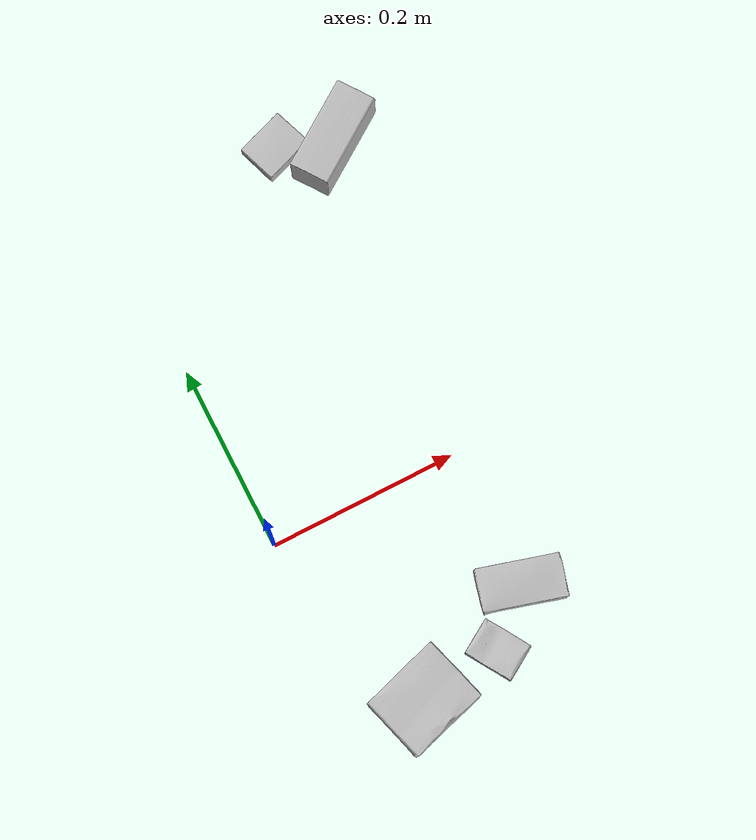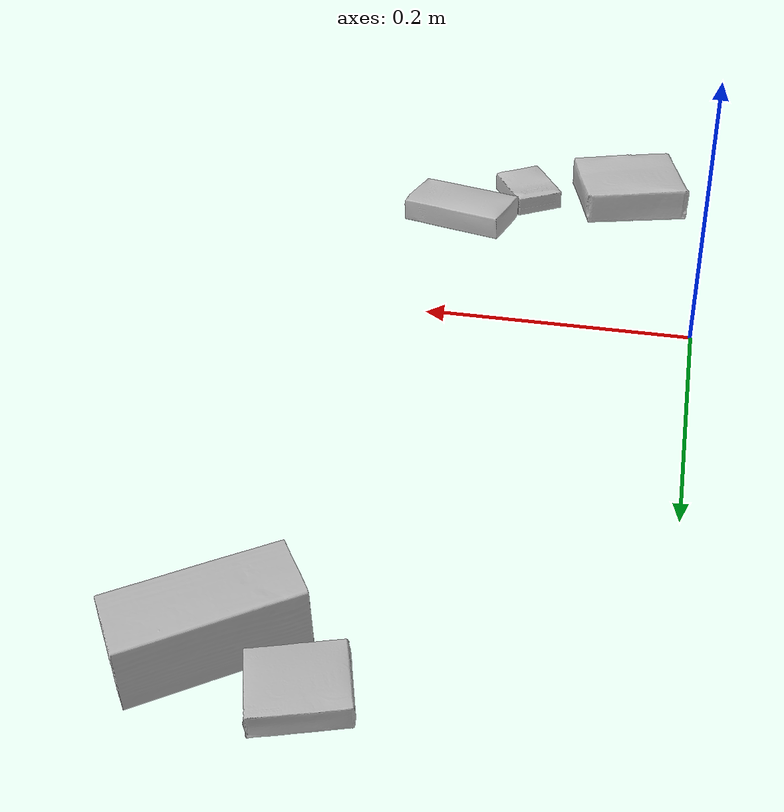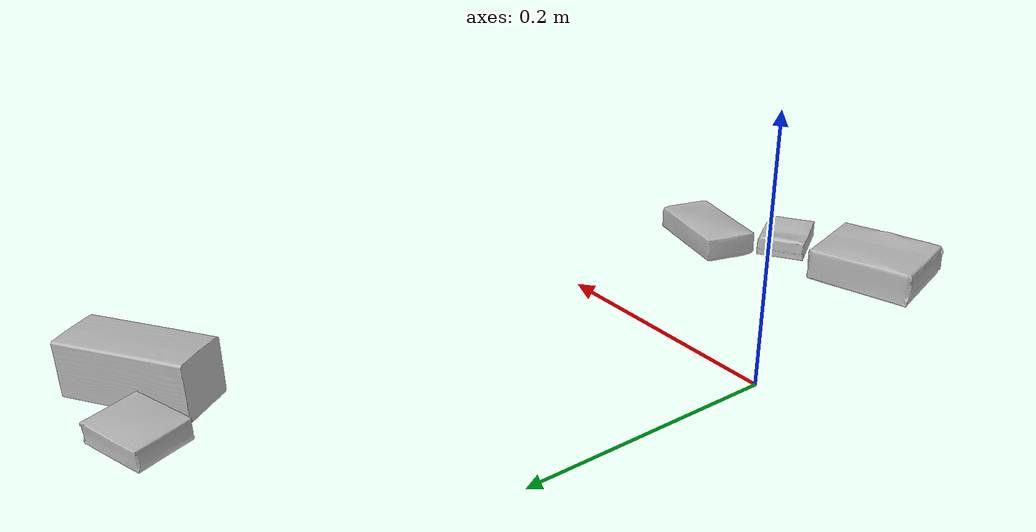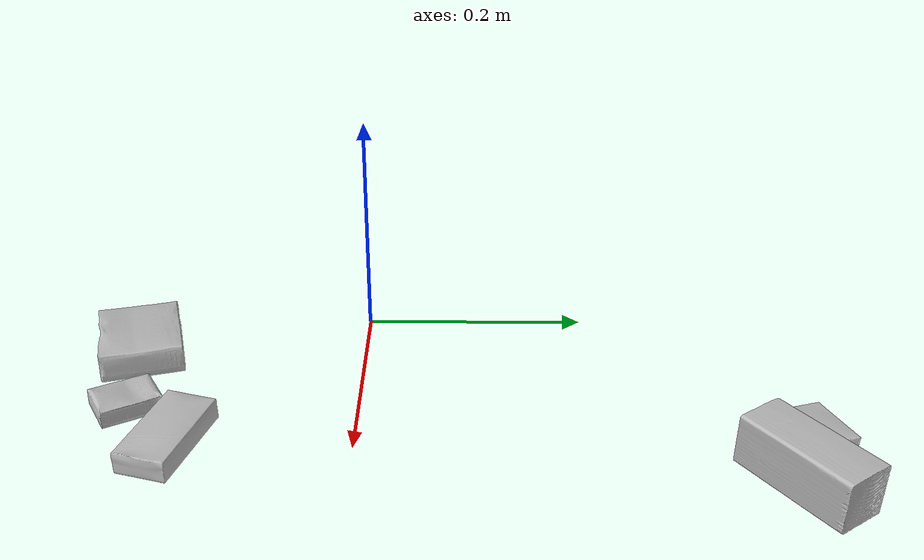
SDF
<sdf version="1.4">
  <world name="default">
    <light name="light1" type="point">
      <pose>0 0 1 0 0 0</pose>
      <diffuse>3 3 3 1</diffuse>
      <specular>3 3 3 1</specular>
    </light>
    <light name="light2" type="point">
      <pose>0 0.5 2 0 0 0</pose>
      <diffuse>1 1 1 1</diffuse>
      <specular>1 1 1 1</specular>
    </light>
    <light name="light3" type="point">
      <pose>0 0.5 2 0 0 0</pose>
      <diffuse>3 3 3 1</diffuse>
      <specular>3 3 3 1</specular>
    </light>
    <scene>
      <ambient>0.7 0.7 0.7</ambient>
    </scene>
    <model name="box1">
      <link name="link_box1">
        <collision name="default">
          <geometry>
            <mesh>
              <uri>model://gelatin_box/collision_meshes/collision.obj</uri>
              <scale>1.0 1.0 1.0</scale>
            </mesh>
          </geometry>
          <surface>
            <friction>
              <ode>
                <mu>0.5</mu>
                <mu2>0.5</mu2>
              </ode>
            </friction>
          <contact>
        <ode>
            <max_vel>0</max_vel>
            <min_depth>0.0001</min_depth>
            <kp>1e8</kp>
        </ode>
    </contact></surface>
        </collision>
        <visual name="default">
          <geometry>
            <mesh>
              <uri>model://gelatin_box/visual_meshes/visual.dae</uri>
              <scale>1.0 1.0 1.0</scale>
            </mesh>
          </geometry>
        </visual>
        <inertial>
          <mass>0.2001359760761261</mass>
          <pose>0.0004319618456065655 0.00011156872642459348 -0.00036403213744051754 -0.0010503718728910522 -0.00475581915504666 0.01644056319729456</pose>
          <inertia>
            <ixx>0.00014127967</ixx>
            <iyy>0.00010091532</iyy>
            <izz>0.00021505913</izz>
            <ixy>0</ixy>
            <ixz>0</ixz>
            <iyz>0</iyz>
          </inertia>
        </inertial>
      </link>
      <pose>0.06077662855386734 -0.20445749163627625 0.015168316662311554 0.005597501898708067 -0.007304554623359647 -1.2954906153888917</pose>
    </model>
    <model name="box2">
      <link name="link_box2">
        <collision name="default">
          <geometry>
            <mesh>
              <uri>model://cracker_box/collision_meshes/collision.obj</uri>
              <scale>0.25 0.25 0.25</scale>
            </mesh>
          </geometry>
          <surface>
            <friction>
              <ode>
                <mu>0.5</mu>
                <mu2>0.5</mu2>
              </ode>
            </friction>
          <contact>
        <ode>
            <max_vel>0</max_vel>
            <min_depth>0.0001</min_depth>
            <kp>1e8</kp>
        </ode>
    </contact></surface>
        </collision>
        <visual name="default">
          <geometry>
            <mesh>
              <uri>model://cracker_box/visual_meshes/visual.dae</uri>
              <scale>0.25 0.25 0.25</scale>
            </mesh>
          </geometry>
        </visual>
        <inertial>
          <mass>0.052757441997528076</mass>
          <pose>0.00023660421720705926 6.358561950037256e-05 -0.0004257383698131889 -0.0003162076882876523 -0.011106491463043667 0.002546795002652857</pose>
          <inertia>
            <ixx>8.38696e-06</ixx>
            <iyy>1.384852e-05</iyy>
            <izz>1.9763109e-05</izz>
            <ixy>0</ixy>
            <ixz>0</ixz>
            <iyz>0</iyz>
          </inertia>
        </inertial>
      </link>
      <pose>0.14876604080200195 -0.19480837881565094 0.009120451286435127 -0.011788118060546318 -0.007367187179516 -1.0266477394871818</pose>
    </model>
    <model name="box3">
      <link name="link_box3">
        <collision name="default">
          <geometry>
            <mesh>
              <uri>model://wood_block/collision_meshes/collision.obj</uri>
              <scale>0.5 0.5 0.5</scale>
            </mesh>
          </geometry>
          <surface>
            <friction>
              <ode>
                <mu>0.5</mu>
                <mu2>0.5</mu2>
              </ode>
            </friction>
          <contact>
        <ode>
            <max_vel>0</max_vel>
            <min_depth>0.0001</min_depth>
            <kp>1e8</kp>
        </ode>
    </contact></surface>
        </collision>
        <visual name="default">
          <geometry>
            <mesh>
              <uri>model://wood_block/visual_meshes/visual.dae</uri>
              <scale>0.5 0.5 0.5</scale>
            </mesh>
          </geometry>
        </visual>
        <inertial>
          <mass>0.15567830204963684</mass>
          <pose>-2.9066577553749084e-06 -0.000285404734313488 0.00013204292918089777 -0.052210429644919926 -0.005192696852900695 -0.006861378081336091</pose>
          <inertia>
            <ixx>5.2080282e-05</ixx>
            <iyy>0.00016452163</iyy>
            <izz>0.00016390622</izz>
            <ixy>0</ixy>
            <ixz>0</ixz>
            <iyz>0</iyz>
          </inertia>
        </inertial>
      </link>
      <pose>0.24431179463863373 0.34723085165023804 0.022629261016845703 -0.005208380023779952 0.005718732119445273 0.605775259078449</pose>
    </model>
    <model name="box4">
      <link name="link_box4">
        <collision name="default">
          <geometry>
            <mesh>
              <uri>model://pudding_box/collision_meshes/collision.obj</uri>
              <scale>0.5 0.5 0.5</scale>
            </mesh>
          </geometry>
          <surface>
            <friction>
              <ode>
                <mu>0.5</mu>
                <mu2>0.5</mu2>
              </ode>
            </friction>
          <contact>
        <ode>
            <max_vel>0</max_vel>
            <min_depth>0.0001</min_depth>
            <kp>1e8</kp>
        </ode>
    </contact></surface>
        </collision>
        <visual name="default">
          <geometry>
            <mesh>
              <uri>model://pudding_box/visual_meshes/visual.dae</uri>
              <scale>0.5 0.5 0.5</scale>
            </mesh>
          </geometry>
        </visual>
        <inertial>
          <mass>0.0498165600001812</mass>
          <pose>0.00024474109522998333 0.00040339428232982755 -0.0002594413817860186 0.00521310227074754 -0.006603796865596143 0.02007982702575369</pose>
          <inertia>
            <ixx>1.4078764e-05</ixx>
            <iyy>9.472293e-06</iyy>
            <izz>2.0790974e-05</izz>
            <ixy>0</ixy>
            <ixz>0</ixz>
            <iyz>0</iyz>
          </inertia>
        </inertial>
      </link>
      <pose>0.18757390975952148 0.3700249493122101 0.00986290629953146 0.022348445478338686 -0.0113918459613396 -1.2415867080842564</pose>
    </model>
    <model name="box5">
      <link name="link_box5">
        <collision name="default">
          <geometry>
            <mesh>
              <uri>model://sugar_box/collision_meshes/collision.obj</uri>
              <scale>0.5 0.5 0.5</scale>
            </mesh>
          </geometry>
          <surface>
            <friction>
              <ode>
                <mu>0.5</mu>
                <mu2>0.5</mu2>
              </ode>
            </friction>
          <contact>
        <ode>
            <max_vel>0</max_vel>
            <min_depth>0.0001</min_depth>
            <kp>1e8</kp>
        </ode>
    </contact></surface>
        </collision>
        <visual name="default">
          <geometry>
            <mesh>
              <uri>model://sugar_box/visual_meshes/visual.dae</uri>
              <scale>0.5 0.5 0.5</scale>
            </mesh>
          </geometry>
        </visual>
        <inertial>
          <mass>0.08508674055337906</mass>
          <pose>0.0005171863595023751 1.924554817378521e-05 -0.00018182402709499002 -0.0004046257768003499 0.0010506634050152445 0.002615378556389427</pose>
          <inertia>
            <ixx>1.7723507e-05</ixx>
            <iyy>5.7286023e-05</iyy>
            <izz>6.85782e-05</izz>
            <ixy>0</ixy>
            <ixz>0</ixz>
            <iyz>0</iyz>
          </inertia>
        </inertial>
      </link>
      <pose>0.20000487565994263 -0.1476428508758545 0.01139929797500372 0.0007750901143328141 -0.023433134276701045 2.8592189997791904</pose>
    </model>
  <physics type="ode">
      <max_contacts>50</max_contacts>
      <ode>
        <solver>
          <type>quick</type>
          <iters>75</iters>
        </solver>
        <constraints>
          <contact_max_correcting_vel>0</contact_max_correcting_vel>
          <contact_surface_layer>0</contact_surface_layer>
        </constraints>
      </ode>
    </physics></world>
</sdf>
